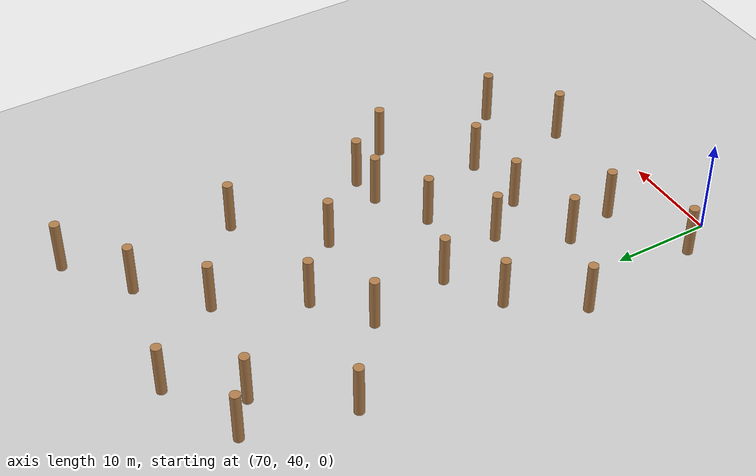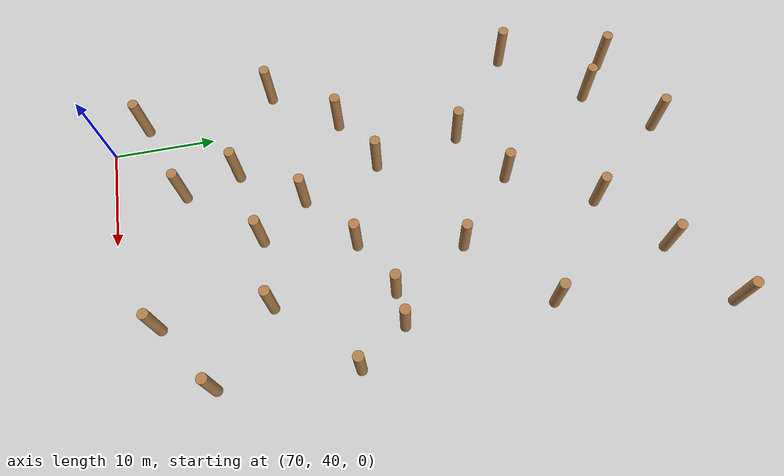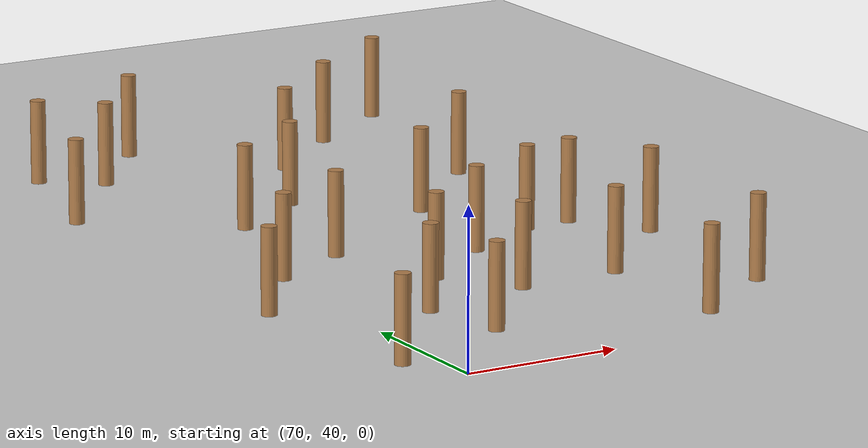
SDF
<sdf version="1.6">
 <world name="default">
  <model name="ground_plane">
   <static>1</static>
   <link name="link">
    <collision name="collision">
     <geometry><plane><normal>0 0 1</normal><size>100 100</size></plane></geometry>
     <surface><friction><ode><mu>100</mu><mu2>50</mu2></ode></friction></surface>
    </collision>
    <visual name="visual">
     <cast_shadows>0</cast_shadows>
     <geometry><plane><normal>0 0 1</normal><size>100 100</size></plane></geometry>
     <material>
      <script><uri>file://media/materials/scripts/gazebo.material</uri><name>Gazebo/Grey</name></script>
     </material>
    </visual>
   </link>
  </model>
  <model name="WoodPillars_2">
   <link name="link_clone">
    <inertial>
     <mass>1</mass>
     <inertia><ixx>0.145833</ixx><ixy>0</ixy><ixz>0</ixz><iyy>0.145833</iyy><iyz>0</iyz><izz>0.125</izz></inertia>
    </inertial>
    <pose>17.6954 -2.91348 -2e-06 0 -0 -0.001289</pose>
    <visual name="visual">
     <geometry><cylinder><radius>0.5</radius><length>5.50507</length></cylinder></geometry>
     <material>
      <script><name>Gazebo/Wood</name><uri>file://media/materials/scripts/gazebo.material</uri></script>
      <shader type="pixel"/>
     </material>
    </visual>
    <collision name="collision">
     <geometry><cylinder><radius>0.5</radius><length>5.50507</length></cylinder></geometry>
     <surface>
      <friction>
       <ode><mu>1</mu><mu2>1</mu2><fdir1>0 0 0</fdir1><slip1>0</slip1><slip2>0</slip2></ode>
       <torsional>
        <coefficient>1</coefficient>
        <patch_radius>0</patch_radius>
        <surface_radius>0</surface_radius>
        <use_patch_radius>1</use_patch_radius>
        <ode><slip>0</slip></ode>
       </torsional>
      </friction>
      <bounce><restitution_coefficient>0</restitution_coefficient><threshold>1e+06</threshold></bounce>
      <contact>
       <collide_without_contact>0</collide_without_contact>
       <collide_without_contact_bitmask>1</collide_without_contact_bitmask>
       <collide_bitmask>1</collide_bitmask>
       <ode>
        <soft_cfm>0</soft_cfm>
        <soft_erp>0.2</soft_erp>
        <kp>1e+13</kp>
        <kd>1</kd>
        <max_vel>0.01</max_vel>
        <min_depth>0</min_depth>
       </ode>
       <bullet>
        <split_impulse>1</split_impulse>
        <split_impulse_penetration_threshold>-0.01</split_impulse_penetration_threshold>
        <soft_cfm>0</soft_cfm>
        <soft_erp>0.2</soft_erp>
        <kp>1e+13</kp>
        <kd>1</kd>
       </bullet>
      </contact>
     </surface>
    </collision>
   </link>
   <link name="link_clone_11">
    <inertial>
     <mass>1</mass>
     <inertia><ixx>0.145833</ixx><ixy>0</ixy><ixz>0</ixz><iyy>0.145833</iyy><iyz>0</iyz><izz>0.125</izz></inertia>
    </inertial>
    <pose>20.1245 17.4079 -2e-06 0 -0 -0.001289</pose>
    <visual name="visual">
     <geometry><cylinder><radius>0.5</radius><length>5.50507</length></cylinder></geometry>
     <material>
      <script><name>Gazebo/Wood</name><uri>file://media/materials/scripts/gazebo.material</uri></script>
      <shader type="pixel"/>
     </material>
    </visual>
    <collision name="collision">
     <geometry><cylinder><radius>0.5</radius><length>5.50507</length></cylinder></geometry>
     <surface>
      <friction>
       <ode><mu>1</mu><mu2>1</mu2><fdir1>0 0 0</fdir1><slip1>0</slip1><slip2>0</slip2></ode>
       <torsional>
        <coefficient>1</coefficient>
        <patch_radius>0</patch_radius>
        <surface_radius>0</surface_radius>
        <use_patch_radius>1</use_patch_radius>
        <ode><slip>0</slip></ode>
       </torsional>
      </friction>
      <bounce><restitution_coefficient>0</restitution_coefficient><threshold>1e+06</threshold></bounce>
      <contact>
       <collide_without_contact>0</collide_without_contact>
       <collide_without_contact_bitmask>1</collide_without_contact_bitmask>
       <collide_bitmask>1</collide_bitmask>
       <ode>
        <soft_cfm>0</soft_cfm>
        <soft_erp>0.2</soft_erp>
        <kp>1e+13</kp>
        <kd>1</kd>
        <max_vel>0.01</max_vel>
        <min_depth>0</min_depth>
       </ode>
       <bullet>
        <split_impulse>1</split_impulse>
        <split_impulse_penetration_threshold>-0.01</split_impulse_penetration_threshold>
        <soft_cfm>0</soft_cfm>
        <soft_erp>0.2</soft_erp>
        <kp>1e+13</kp>
        <kd>1</kd>
       </bullet>
      </contact>
     </surface>
    </collision>
   </link>
   <link name="link_clone_12">
    <inertial>
     <mass>1</mass>
     <inertia><ixx>0.145833</ixx><ixy>0</ixy><ixz>0</ixz><iyy>0.145833</iyy><iyz>0</iyz><izz>0.125</izz></inertia>
    </inertial>
    <pose>36.6063 2.3916 -3e-06 0 -0 -0.001289</pose>
    <visual name="visual">
     <geometry><cylinder><radius>0.5</radius><length>5.50507</length></cylinder></geometry>
     <material>
      <script><name>Gazebo/Wood</name><uri>file://media/materials/scripts/gazebo.material</uri></script>
      <shader type="pixel"/>
     </material>
    </visual>
    <collision name="collision">
     <geometry><cylinder><radius>0.5</radius><length>5.50507</length></cylinder></geometry>
     <surface>
      <friction>
       <ode><mu>1</mu><mu2>1</mu2><fdir1>0 0 0</fdir1><slip1>0</slip1><slip2>0</slip2></ode>
       <torsional>
        <coefficient>1</coefficient>
        <patch_radius>0</patch_radius>
        <surface_radius>0</surface_radius>
        <use_patch_radius>1</use_patch_radius>
        <ode><slip>0</slip></ode>
       </torsional>
      </friction>
      <bounce><restitution_coefficient>0</restitution_coefficient><threshold>1e+06</threshold></bounce>
      <contact>
       <collide_without_contact>0</collide_without_contact>
       <collide_without_contact_bitmask>1</collide_without_contact_bitmask>
       <collide_bitmask>1</collide_bitmask>
       <ode>
        <soft_cfm>0</soft_cfm>
        <soft_erp>0.2</soft_erp>
        <kp>1e+13</kp>
        <kd>1</kd>
        <max_vel>0.01</max_vel>
        <min_depth>0</min_depth>
       </ode>
       <bullet>
        <split_impulse>1</split_impulse>
        <split_impulse_penetration_threshold>-0.01</split_impulse_penetration_threshold>
        <soft_cfm>0</soft_cfm>
        <soft_erp>0.2</soft_erp>
        <kp>1e+13</kp>
        <kd>1</kd>
       </bullet>
      </contact>
     </surface>
    </collision>
   </link>
   <link name="link_clone_13">
    <inertial>
     <mass>1</mass>
     <inertia><ixx>0.145833</ixx><ixy>0</ixy><ixz>0</ixz><iyy>0.145833</iyy><iyz>0</iyz><izz>0.125</izz></inertia>
    </inertial>
    <pose>32.2715 -23.3528 -3e-06 0 -0 -0.001289</pose>
    <visual name="visual">
     <geometry><cylinder><radius>0.5</radius><length>5.50507</length></cylinder></geometry>
     <material>
      <script><name>Gazebo/Wood</name><uri>file://media/materials/scripts/gazebo.material</uri></script>
      <shader type="pixel"/>
     </material>
    </visual>
    <collision name="collision">
     <geometry><cylinder><radius>0.5</radius><length>5.50507</length></cylinder></geometry>
     <surface>
      <friction>
       <ode><mu>1</mu><mu2>1</mu2><fdir1>0 0 0</fdir1><slip1>0</slip1><slip2>0</slip2></ode>
       <torsional>
        <coefficient>1</coefficient>
        <patch_radius>0</patch_radius>
        <surface_radius>0</surface_radius>
        <use_patch_radius>1</use_patch_radius>
        <ode><slip>0</slip></ode>
       </torsional>
      </friction>
      <bounce><restitution_coefficient>0</restitution_coefficient><threshold>1e+06</threshold></bounce>
      <contact>
       <collide_without_contact>0</collide_without_contact>
       <collide_without_contact_bitmask>1</collide_without_contact_bitmask>
       <collide_bitmask>1</collide_bitmask>
       <ode>
        <soft_cfm>0</soft_cfm>
        <soft_erp>0.2</soft_erp>
        <kp>1e+13</kp>
        <kd>1</kd>
        <max_vel>0.01</max_vel>
        <min_depth>0</min_depth>
       </ode>
       <bullet>
        <split_impulse>1</split_impulse>
        <split_impulse_penetration_threshold>-0.01</split_impulse_penetration_threshold>
        <soft_cfm>0</soft_cfm>
        <soft_erp>0.2</soft_erp>
        <kp>1e+13</kp>
        <kd>1</kd>
       </bullet>
      </contact>
     </surface>
    </collision>
   </link>
   <link name="link_clone_14">
    <inertial>
     <mass>1</mass>
     <inertia><ixx>0.145833</ixx><ixy>0</ixy><ixz>0</ixz><iyy>0.145833</iyy><iyz>0</iyz><izz>0.125</izz></inertia>
    </inertial>
    <pose>9.31461 -20.9997 -1e-06 0 -0 -0.001289</pose>
    <visual name="visual">
     <geometry><cylinder><radius>0.5</radius><length>5.50507</length></cylinder></geometry>
     <material>
      <script><name>Gazebo/Wood</name><uri>file://media/materials/scripts/gazebo.material</uri></script>
      <shader type="pixel"/>
     </material>
    </visual>
    <collision name="collision">
     <geometry><cylinder><radius>0.5</radius><length>5.50507</length></cylinder></geometry>
     <surface>
      <friction>
       <ode><mu>1</mu><mu2>1</mu2><fdir1>0 0 0</fdir1><slip1>0</slip1><slip2>0</slip2></ode>
       <torsional>
        <coefficient>1</coefficient>
        <patch_radius>0</patch_radius>
        <surface_radius>0</surface_radius>
        <use_patch_radius>1</use_patch_radius>
        <ode><slip>0</slip></ode>
       </torsional>
      </friction>
      <bounce><restitution_coefficient>0</restitution_coefficient><threshold>1e+06</threshold></bounce>
      <contact>
       <collide_without_contact>0</collide_without_contact>
       <collide_without_contact_bitmask>1</collide_without_contact_bitmask>
       <collide_bitmask>1</collide_bitmask>
       <ode>
        <soft_cfm>0</soft_cfm>
        <soft_erp>0.2</soft_erp>
        <kp>1e+13</kp>
        <kd>1</kd>
        <max_vel>0.01</max_vel>
        <min_depth>0</min_depth>
       </ode>
       <bullet>
        <split_impulse>1</split_impulse>
        <split_impulse_penetration_threshold>-0.01</split_impulse_penetration_threshold>
        <soft_cfm>0</soft_cfm>
        <soft_erp>0.2</soft_erp>
        <kp>1e+13</kp>
        <kd>1</kd>
       </bullet>
      </contact>
     </surface>
    </collision>
   </link>
   <link name="link_clone_15">
    <inertial>
     <mass>1</mass>
     <inertia><ixx>0.145833</ixx><ixy>0</ixy><ixz>0</ixz><iyy>0.145833</iyy><iyz>0</iyz><izz>0.125</izz></inertia>
    </inertial>
    <pose>17.9894 -25.1945 -2e-06 0 -0 -0.001289</pose>
    <visual name="visual">
     <geometry><cylinder><radius>0.5</radius><length>5.50507</length></cylinder></geometry>
     <material>
      <script><name>Gazebo/Wood</name><uri>file://media/materials/scripts/gazebo.material</uri></script>
      <shader type="pixel"/>
     </material>
    </visual>
    <collision name="collision">
     <geometry><cylinder><radius>0.5</radius><length>5.50507</length></cylinder></geometry>
     <surface>
      <friction>
       <ode><mu>1</mu><mu2>1</mu2><fdir1>0 0 0</fdir1><slip1>0</slip1><slip2>0</slip2></ode>
       <torsional>
        <coefficient>1</coefficient>
        <patch_radius>0</patch_radius>
        <surface_radius>0</surface_radius>
        <use_patch_radius>1</use_patch_radius>
        <ode><slip>0</slip></ode>
       </torsional>
      </friction>
      <bounce><restitution_coefficient>0</restitution_coefficient><threshold>1e+06</threshold></bounce>
      <contact>
       <collide_without_contact>0</collide_without_contact>
       <collide_without_contact_bitmask>1</collide_without_contact_bitmask>
       <collide_bitmask>1</collide_bitmask>
       <ode>
        <soft_cfm>0</soft_cfm>
        <soft_erp>0.2</soft_erp>
        <kp>1e+13</kp>
        <kd>1</kd>
        <max_vel>0.01</max_vel>
        <min_depth>0</min_depth>
       </ode>
       <bullet>
        <split_impulse>1</split_impulse>
        <split_impulse_penetration_threshold>-0.01</split_impulse_penetration_threshold>
        <soft_cfm>0</soft_cfm>
        <soft_erp>0.2</soft_erp>
        <kp>1e+13</kp>
        <kd>1</kd>
       </bullet>
      </contact>
     </surface>
    </collision>
   </link>
   <link name="link_clone_16">
    <inertial>
     <mass>1</mass>
     <inertia><ixx>0.145833</ixx><ixy>0</ixy><ixz>0</ixz><iyy>0.145833</iyy><iyz>0</iyz><izz>0.125</izz></inertia>
    </inertial>
    <pose>32.9662 -11.9429 -3e-06 0 -0 -0.001289</pose>
    <visual name="visual">
     <geometry><cylinder><radius>0.5</radius><length>5.50507</length></cylinder></geometry>
     <material>
      <script><name>Gazebo/Wood</name><uri>file://media/materials/scripts/gazebo.material</uri></script>
      <shader type="pixel"/>
     </material>
    </visual>
    <collision name="collision">
     <geometry><cylinder><radius>0.5</radius><length>5.50507</length></cylinder></geometry>
     <surface>
      <friction>
       <ode><mu>1</mu><mu2>1</mu2><fdir1>0 0 0</fdir1><slip1>0</slip1><slip2>0</slip2></ode>
       <torsional>
        <coefficient>1</coefficient>
        <patch_radius>0</patch_radius>
        <surface_radius>0</surface_radius>
        <use_patch_radius>1</use_patch_radius>
        <ode><slip>0</slip></ode>
       </torsional>
      </friction>
      <bounce><restitution_coefficient>0</restitution_coefficient><threshold>1e+06</threshold></bounce>
      <contact>
       <collide_without_contact>0</collide_without_contact>
       <collide_without_contact_bitmask>1</collide_without_contact_bitmask>
       <collide_bitmask>1</collide_bitmask>
       <ode>
        <soft_cfm>0</soft_cfm>
        <soft_erp>0.2</soft_erp>
        <kp>1e+13</kp>
        <kd>1</kd>
        <max_vel>0.01</max_vel>
        <min_depth>0</min_depth>
       </ode>
       <bullet>
        <split_impulse>1</split_impulse>
        <split_impulse_penetration_threshold>-0.01</split_impulse_penetration_threshold>
        <soft_cfm>0</soft_cfm>
        <soft_erp>0.2</soft_erp>
        <kp>1e+13</kp>
        <kd>1</kd>
       </bullet>
      </contact>
     </surface>
    </collision>
   </link>
   <link name="link_clone_17">
    <inertial>
     <mass>1</mass>
     <inertia><ixx>0.145833</ixx><ixy>0</ixy><ixz>0</ixz><iyy>0.145833</iyy><iyz>0</iyz><izz>0.125</izz></inertia>
    </inertial>
    <pose>19.3784 -11.4604 -2e-06 0 -0 -0.001289</pose>
    <visual name="visual">
     <geometry><cylinder><radius>0.5</radius><length>5.50507</length></cylinder></geometry>
     <material>
      <script><name>Gazebo/Wood</name><uri>file://media/materials/scripts/gazebo.material</uri></script>
      <shader type="pixel"/>
     </material>
    </visual>
    <collision name="collision">
     <geometry><cylinder><radius>0.5</radius><length>5.50507</length></cylinder></geometry>
     <surface>
      <friction>
       <ode><mu>1</mu><mu2>1</mu2><fdir1>0 0 0</fdir1><slip1>0</slip1><slip2>0</slip2></ode>
       <torsional>
        <coefficient>1</coefficient>
        <patch_radius>0</patch_radius>
        <surface_radius>0</surface_radius>
        <use_patch_radius>1</use_patch_radius>
        <ode><slip>0</slip></ode>
       </torsional>
      </friction>
      <bounce><restitution_coefficient>0</restitution_coefficient><threshold>1e+06</threshold></bounce>
      <contact>
       <collide_without_contact>0</collide_without_contact>
       <collide_without_contact_bitmask>1</collide_without_contact_bitmask>
       <collide_bitmask>1</collide_bitmask>
       <ode>
        <soft_cfm>0</soft_cfm>
        <soft_erp>0.2</soft_erp>
        <kp>1e+13</kp>
        <kd>1</kd>
        <max_vel>0.01</max_vel>
        <min_depth>0</min_depth>
       </ode>
       <bullet>
        <split_impulse>1</split_impulse>
        <split_impulse_penetration_threshold>-0.01</split_impulse_penetration_threshold>
        <soft_cfm>0</soft_cfm>
        <soft_erp>0.2</soft_erp>
        <kp>1e+13</kp>
        <kd>1</kd>
       </bullet>
      </contact>
     </surface>
    </collision>
   </link>
   <link name="link_clone_18">
    <inertial>
     <mass>1</mass>
     <inertia><ixx>0.145833</ixx><ixy>0</ixy><ixz>0</ixz><iyy>0.145833</iyy><iyz>0</iyz><izz>0.125</izz></inertia>
    </inertial>
    <pose>9.1573 3.67739 -1e-06 0 -0 -0.001289</pose>
    <visual name="visual">
     <geometry><cylinder><radius>0.5</radius><length>5.50507</length></cylinder></geometry>
     <material>
      <script><name>Gazebo/Wood</name><uri>file://media/materials/scripts/gazebo.material</uri></script>
      <shader type="pixel"/>
     </material>
    </visual>
    <collision name="collision">
     <geometry><cylinder><radius>0.5</radius><length>5.50507</length></cylinder></geometry>
     <surface>
      <friction>
       <ode><mu>1</mu><mu2>1</mu2><fdir1>0 0 0</fdir1><slip1>0</slip1><slip2>0</slip2></ode>
       <torsional>
        <coefficient>1</coefficient>
        <patch_radius>0</patch_radius>
        <surface_radius>0</surface_radius>
        <use_patch_radius>1</use_patch_radius>
        <ode><slip>0</slip></ode>
       </torsional>
      </friction>
      <bounce><restitution_coefficient>0</restitution_coefficient><threshold>1e+06</threshold></bounce>
      <contact>
       <collide_without_contact>0</collide_without_contact>
       <collide_without_contact_bitmask>1</collide_without_contact_bitmask>
       <collide_bitmask>1</collide_bitmask>
       <ode>
        <soft_cfm>0</soft_cfm>
        <soft_erp>0.2</soft_erp>
        <kp>1e+13</kp>
        <kd>1</kd>
        <max_vel>0.01</max_vel>
        <min_depth>0</min_depth>
       </ode>
       <bullet>
        <split_impulse>1</split_impulse>
        <split_impulse_penetration_threshold>-0.01</split_impulse_penetration_threshold>
        <soft_cfm>0</soft_cfm>
        <soft_erp>0.2</soft_erp>
        <kp>1e+13</kp>
        <kd>1</kd>
       </bullet>
      </contact>
     </surface>
    </collision>
   </link>
   <link name="link_clone_21">
    <inertial>
     <mass>1</mass>
     <inertia><ixx>0.145833</ixx><ixy>0</ixy><ixz>0</ixz><iyy>0.145833</iyy><iyz>0</iyz><izz>0.125</izz></inertia>
    </inertial>
    <pose>15.2748 11.406 -1e-06 0 -0 -0.001289</pose>
    <visual name="visual">
     <geometry><cylinder><radius>0.5</radius><length>5.50507</length></cylinder></geometry>
     <material>
      <script><name>Gazebo/Wood</name><uri>file://media/materials/scripts/gazebo.material</uri></script>
      <shader type="pixel"/>
     </material>
    </visual>
    <collision name="collision">
     <geometry><cylinder><radius>0.5</radius><length>5.50507</length></cylinder></geometry>
     <surface>
      <friction>
       <ode><mu>1</mu><mu2>1</mu2><fdir1>0 0 0</fdir1><slip1>0</slip1><slip2>0</slip2></ode>
       <torsional>
        <coefficient>1</coefficient>
        <patch_radius>0</patch_radius>
        <surface_radius>0</surface_radius>
        <use_patch_radius>1</use_patch_radius>
        <ode><slip>0</slip></ode>
       </torsional>
      </friction>
      <bounce><restitution_coefficient>0</restitution_coefficient><threshold>1e+06</threshold></bounce>
      <contact>
       <collide_without_contact>0</collide_without_contact>
       <collide_without_contact_bitmask>1</collide_without_contact_bitmask>
       <collide_bitmask>1</collide_bitmask>
       <ode>
        <soft_cfm>0</soft_cfm>
        <soft_erp>0.2</soft_erp>
        <kp>1e+13</kp>
        <kd>1</kd>
        <max_vel>0.01</max_vel>
        <min_depth>0</min_depth>
       </ode>
       <bullet>
        <split_impulse>1</split_impulse>
        <split_impulse_penetration_threshold>-0.01</split_impulse_penetration_threshold>
        <soft_cfm>0</soft_cfm>
        <soft_erp>0.2</soft_erp>
        <kp>1e+13</kp>
        <kd>1</kd>
       </bullet>
      </contact>
     </surface>
    </collision>
   </link>
   <link name="link_clone_22">
    <inertial>
     <mass>1</mass>
     <inertia><ixx>0.145833</ixx><ixy>0</ixy><ixz>0</ixz><iyy>0.145833</iyy><iyz>0</iyz><izz>0.125</izz></inertia>
    </inertial>
    <pose>27.313 9.05961 -2e-06 0 -0 -0.001289</pose>
    <visual name="visual">
     <geometry><cylinder><radius>0.5</radius><length>5.50507</length></cylinder></geometry>
     <material>
      <script><name>Gazebo/Wood</name><uri>file://media/materials/scripts/gazebo.material</uri></script>
      <shader type="pixel"/>
     </material>
    </visual>
    <collision name="collision">
     <geometry><cylinder><radius>0.5</radius><length>5.50507</length></cylinder></geometry>
     <surface>
      <friction>
       <ode><mu>1</mu><mu2>1</mu2><fdir1>0 0 0</fdir1><slip1>0</slip1><slip2>0</slip2></ode>
       <torsional>
        <coefficient>1</coefficient>
        <patch_radius>0</patch_radius>
        <surface_radius>0</surface_radius>
        <use_patch_radius>1</use_patch_radius>
        <ode><slip>0</slip></ode>
       </torsional>
      </friction>
      <bounce><restitution_coefficient>0</restitution_coefficient><threshold>1e+06</threshold></bounce>
      <contact>
       <collide_without_contact>0</collide_without_contact>
       <collide_without_contact_bitmask>1</collide_without_contact_bitmask>
       <collide_bitmask>1</collide_bitmask>
       <ode>
        <soft_cfm>0</soft_cfm>
        <soft_erp>0.2</soft_erp>
        <kp>1e+13</kp>
        <kd>1</kd>
        <max_vel>0.01</max_vel>
        <min_depth>0</min_depth>
       </ode>
       <bullet>
        <split_impulse>1</split_impulse>
        <split_impulse_penetration_threshold>-0.01</split_impulse_penetration_threshold>
        <soft_cfm>0</soft_cfm>
        <soft_erp>0.2</soft_erp>
        <kp>1e+13</kp>
        <kd>1</kd>
       </bullet>
      </contact>
     </surface>
    </collision>
   </link>
   <link name="link_clone_23">
    <inertial>
     <mass>1</mass>
     <inertia><ixx>0.145833</ixx><ixy>0</ixy><ixz>0</ixz><iyy>0.145833</iyy><iyz>0</iyz><izz>0.125</izz></inertia>
    </inertial>
    <pose>29.5176 -4.71623 -3e-06 0 -0 -0.001289</pose>
    <visual name="visual">
     <geometry><cylinder><radius>0.5</radius><length>5.50507</length></cylinder></geometry>
     <material>
      <script><name>Gazebo/Wood</name><uri>file://media/materials/scripts/gazebo.material</uri></script>
      <shader type="pixel"/>
     </material>
    </visual>
    <collision name="collision">
     <geometry><cylinder><radius>0.5</radius><length>5.50507</length></cylinder></geometry>
     <surface>
      <friction>
       <ode><mu>1</mu><mu2>1</mu2><fdir1>0 0 0</fdir1><slip1>0</slip1><slip2>0</slip2></ode>
       <torsional>
        <coefficient>1</coefficient>
        <patch_radius>0</patch_radius>
        <surface_radius>0</surface_radius>
        <use_patch_radius>1</use_patch_radius>
        <ode><slip>0</slip></ode>
       </torsional>
      </friction>
      <bounce><restitution_coefficient>0</restitution_coefficient><threshold>1e+06</threshold></bounce>
      <contact>
       <collide_without_contact>0</collide_without_contact>
       <collide_without_contact_bitmask>1</collide_without_contact_bitmask>
       <collide_bitmask>1</collide_bitmask>
       <ode>
        <soft_cfm>0</soft_cfm>
        <soft_erp>0.2</soft_erp>
        <kp>1e+13</kp>
        <kd>1</kd>
        <max_vel>0.01</max_vel>
        <min_depth>0</min_depth>
       </ode>
       <bullet>
        <split_impulse>1</split_impulse>
        <split_impulse_penetration_threshold>-0.01</split_impulse_penetration_threshold>
        <soft_cfm>0</soft_cfm>
        <soft_erp>0.2</soft_erp>
        <kp>1e+13</kp>
        <kd>1</kd>
       </bullet>
      </contact>
     </surface>
    </collision>
   </link>
   <link name="link_clone_25">
    <inertial>
     <mass>1</mass>
     <inertia><ixx>0.145833</ixx><ixy>0</ixy><ixz>0</ixz><iyy>0.145833</iyy><iyz>0</iyz><izz>0.125</izz></inertia>
    </inertial>
    <pose>11.7271 14.0632 -1e-06 0 -0 -0.001289</pose>
    <visual name="visual">
     <geometry><cylinder><radius>0.5</radius><length>5.50507</length></cylinder></geometry>
     <material>
      <script><name>Gazebo/Wood</name><uri>file://media/materials/scripts/gazebo.material</uri></script>
      <shader type="pixel"/>
     </material>
    </visual>
    <collision name="collision">
     <geometry><cylinder><radius>0.5</radius><length>5.50507</length></cylinder></geometry>
     <surface>
      <friction>
       <ode><mu>1</mu><mu2>1</mu2><fdir1>0 0 0</fdir1><slip1>0</slip1><slip2>0</slip2></ode>
       <torsional>
        <coefficient>1</coefficient>
        <patch_radius>0</patch_radius>
        <surface_radius>0</surface_radius>
        <use_patch_radius>1</use_patch_radius>
        <ode><slip>0</slip></ode>
       </torsional>
      </friction>
      <bounce><restitution_coefficient>0</restitution_coefficient><threshold>1e+06</threshold></bounce>
      <contact>
       <collide_without_contact>0</collide_without_contact>
       <collide_without_contact_bitmask>1</collide_without_contact_bitmask>
       <collide_bitmask>1</collide_bitmask>
       <ode>
        <soft_cfm>0</soft_cfm>
        <soft_erp>0.2</soft_erp>
        <kp>1e+13</kp>
        <kd>1</kd>
        <max_vel>0.01</max_vel>
        <min_depth>0</min_depth>
       </ode>
       <bullet>
        <split_impulse>1</split_impulse>
        <split_impulse_penetration_threshold>-0.01</split_impulse_penetration_threshold>
        <soft_cfm>0</soft_cfm>
        <soft_erp>0.2</soft_erp>
        <kp>1e+13</kp>
        <kd>1</kd>
       </bullet>
      </contact>
     </surface>
    </collision>
   </link>
   <link name="link_clone_26">
    <inertial>
     <mass>1</mass>
     <inertia><ixx>0.145833</ixx><ixy>0</ixy><ixz>0</ixz><iyy>0.145833</iyy><iyz>0</iyz><izz>0.125</izz></inertia>
    </inertial>
    <pose>13.9187 -14.5508 -1e-06 0 -0 -0.001289</pose>
    <visual name="visual">
     <geometry><cylinder><radius>0.5</radius><length>5.50507</length></cylinder></geometry>
     <material>
      <script><name>Gazebo/Wood</name><uri>file://media/materials/scripts/gazebo.material</uri></script>
      <shader type="pixel"/>
     </material>
    </visual>
    <collision name="collision">
     <geometry><cylinder><radius>0.5</radius><length>5.50507</length></cylinder></geometry>
     <surface>
      <friction>
       <ode><mu>1</mu><mu2>1</mu2><fdir1>0 0 0</fdir1><slip1>0</slip1><slip2>0</slip2></ode>
       <torsional>
        <coefficient>1</coefficient>
        <patch_radius>0</patch_radius>
        <surface_radius>0</surface_radius>
        <use_patch_radius>1</use_patch_radius>
        <ode><slip>0</slip></ode>
       </torsional>
      </friction>
      <bounce><restitution_coefficient>0</restitution_coefficient><threshold>1e+06</threshold></bounce>
      <contact>
       <collide_without_contact>0</collide_without_contact>
       <collide_without_contact_bitmask>1</collide_without_contact_bitmask>
       <collide_bitmask>1</collide_bitmask>
       <ode>
        <soft_cfm>0</soft_cfm>
        <soft_erp>0.2</soft_erp>
        <kp>1e+13</kp>
        <kd>1</kd>
        <max_vel>0.01</max_vel>
        <min_depth>0</min_depth>
       </ode>
       <bullet>
        <split_impulse>1</split_impulse>
        <split_impulse_penetration_threshold>-0.01</split_impulse_penetration_threshold>
        <soft_cfm>0</soft_cfm>
        <soft_erp>0.2</soft_erp>
        <kp>1e+13</kp>
        <kd>1</kd>
       </bullet>
      </contact>
     </surface>
    </collision>
   </link>
   <link name="link_clone_28">
    <inertial>
     <mass>1</mass>
     <inertia><ixx>0.145833</ixx><ixy>0</ixy><ixz>0</ixz><iyy>0.145833</iyy><iyz>0</iyz><izz>0.125</izz></inertia>
    </inertial>
    <pose>27.5353 -14.766 -3e-06 0 -0 -0.001289</pose>
    <visual name="visual">
     <geometry><cylinder><radius>0.5</radius><length>5.50507</length></cylinder></geometry>
     <material>
      <script><name>Gazebo/Wood</name><uri>file://media/materials/scripts/gazebo.material</uri></script>
      <shader type="pixel"/>
     </material>
    </visual>
    <collision name="collision">
     <geometry><cylinder><radius>0.5</radius><length>5.50507</length></cylinder></geometry>
     <surface>
      <friction>
       <ode><mu>1</mu><mu2>1</mu2><fdir1>0 0 0</fdir1><slip1>0</slip1><slip2>0</slip2></ode>
       <torsional>
        <coefficient>1</coefficient>
        <patch_radius>0</patch_radius>
        <surface_radius>0</surface_radius>
        <use_patch_radius>1</use_patch_radius>
        <ode><slip>0</slip></ode>
       </torsional>
      </friction>
      <bounce><restitution_coefficient>0</restitution_coefficient><threshold>1e+06</threshold></bounce>
      <contact>
       <collide_without_contact>0</collide_without_contact>
       <collide_without_contact_bitmask>1</collide_without_contact_bitmask>
       <collide_bitmask>1</collide_bitmask>
       <ode>
        <soft_cfm>0</soft_cfm>
        <soft_erp>0.2</soft_erp>
        <kp>1e+13</kp>
        <kd>1</kd>
        <max_vel>0.01</max_vel>
        <min_depth>0</min_depth>
       </ode>
       <bullet>
        <split_impulse>1</split_impulse>
        <split_impulse_penetration_threshold>-0.01</split_impulse_penetration_threshold>
        <soft_cfm>0</soft_cfm>
        <soft_erp>0.2</soft_erp>
        <kp>1e+13</kp>
        <kd>1</kd>
       </bullet>
      </contact>
     </surface>
    </collision>
   </link>
   <link name="link_clone_29">
    <inertial>
     <mass>1</mass>
     <inertia><ixx>0.145833</ixx><ixy>0</ixy><ixz>0</ixz><iyy>0.145833</iyy><iyz>0</iyz><izz>0.125</izz></inertia>
    </inertial>
    <pose>39.4401 -16.2696 -4e-06 0 -0 -0.001289</pose>
    <visual name="visual">
     <geometry><cylinder><radius>0.5</radius><length>5.50507</length></cylinder></geometry>
     <material>
      <script><name>Gazebo/Wood</name><uri>file://media/materials/scripts/gazebo.material</uri></script>
      <shader type="pixel"/>
     </material>
    </visual>
    <collision name="collision">
     <geometry><cylinder><radius>0.5</radius><length>5.50507</length></cylinder></geometry>
     <surface>
      <friction>
       <ode><mu>1</mu><mu2>1</mu2><fdir1>0 0 0</fdir1><slip1>0</slip1><slip2>0</slip2></ode>
       <torsional>
        <coefficient>1</coefficient>
        <patch_radius>0</patch_radius>
        <surface_radius>0</surface_radius>
        <use_patch_radius>1</use_patch_radius>
        <ode><slip>0</slip></ode>
       </torsional>
      </friction>
      <bounce><restitution_coefficient>0</restitution_coefficient><threshold>1e+06</threshold></bounce>
      <contact>
       <collide_without_contact>0</collide_without_contact>
       <collide_without_contact_bitmask>1</collide_without_contact_bitmask>
       <collide_bitmask>1</collide_bitmask>
       <ode>
        <soft_cfm>0</soft_cfm>
        <soft_erp>0.2</soft_erp>
        <kp>1e+13</kp>
        <kd>1</kd>
        <max_vel>0.01</max_vel>
        <min_depth>0</min_depth>
       </ode>
       <bullet>
        <split_impulse>1</split_impulse>
        <split_impulse_penetration_threshold>-0.01</split_impulse_penetration_threshold>
        <soft_cfm>0</soft_cfm>
        <soft_erp>0.2</soft_erp>
        <kp>1e+13</kp>
        <kd>1</kd>
       </bullet>
      </contact>
     </surface>
    </collision>
   </link>
   <link name="link_clone_33">
    <inertial>
     <mass>1</mass>
     <inertia><ixx>0.145833</ixx><ixy>0</ixy><ixz>0</ixz><iyy>0.145833</iyy><iyz>0</iyz><izz>0.125</izz></inertia>
    </inertial>
    <pose>39.6457 18.8804 -3e-06 0 -0 -0.001289</pose>
    <visual name="visual">
     <geometry><cylinder><radius>0.5</radius><length>5.50507</length></cylinder></geometry>
     <material>
      <script><name>Gazebo/Wood</name><uri>file://media/materials/scripts/gazebo.material</uri></script>
      <shader type="pixel"/>
     </material>
    </visual>
    <collision name="collision">
     <geometry><cylinder><radius>0.5</radius><length>5.50507</length></cylinder></geometry>
     <surface>
      <friction>
       <ode><mu>1</mu><mu2>1</mu2><fdir1>0 0 0</fdir1><slip1>0</slip1><slip2>0</slip2></ode>
       <torsional>
        <coefficient>1</coefficient>
        <patch_radius>0</patch_radius>
        <surface_radius>0</surface_radius>
        <use_patch_radius>1</use_patch_radius>
        <ode><slip>0</slip></ode>
       </torsional>
      </friction>
      <bounce><restitution_coefficient>0</restitution_coefficient><threshold>1e+06</threshold></bounce>
      <contact>
       <collide_without_contact>0</collide_without_contact>
       <collide_without_contact_bitmask>1</collide_without_contact_bitmask>
       <collide_bitmask>1</collide_bitmask>
       <ode>
        <soft_cfm>0</soft_cfm>
        <soft_erp>0.2</soft_erp>
        <kp>1e+13</kp>
        <kd>1</kd>
        <max_vel>0.01</max_vel>
        <min_depth>0</min_depth>
       </ode>
       <bullet>
        <split_impulse>1</split_impulse>
        <split_impulse_penetration_threshold>-0.01</split_impulse_penetration_threshold>
        <soft_cfm>0</soft_cfm>
        <soft_erp>0.2</soft_erp>
        <kp>1e+13</kp>
        <kd>1</kd>
       </bullet>
      </contact>
     </surface>
    </collision>
   </link>
   <link name="link_clone_34">
    <inertial>
     <mass>1</mass>
     <inertia><ixx>0.145833</ixx><ixy>0</ixy><ixz>0</ixz><iyy>0.145833</iyy><iyz>0</iyz><izz>0.125</izz></inertia>
    </inertial>
    <pose>25.4673 -23.5908 -3e-06 0 -0 -0.001289</pose>
    <visual name="visual">
     <geometry><cylinder><radius>0.5</radius><length>5.50507</length></cylinder></geometry>
     <material>
      <script><name>Gazebo/Wood</name><uri>file://media/materials/scripts/gazebo.material</uri></script>
      <shader type="pixel"/>
     </material>
    </visual>
    <collision name="collision">
     <geometry><cylinder><radius>0.5</radius><length>5.50507</length></cylinder></geometry>
     <surface>
      <friction>
       <ode><mu>1</mu><mu2>1</mu2><fdir1>0 0 0</fdir1><slip1>0</slip1><slip2>0</slip2></ode>
       <torsional>
        <coefficient>1</coefficient>
        <patch_radius>0</patch_radius>
        <surface_radius>0</surface_radius>
        <use_patch_radius>1</use_patch_radius>
        <ode><slip>0</slip></ode>
       </torsional>
      </friction>
      <bounce><restitution_coefficient>0</restitution_coefficient><threshold>1e+06</threshold></bounce>
      <contact>
       <collide_without_contact>0</collide_without_contact>
       <collide_without_contact_bitmask>1</collide_without_contact_bitmask>
       <collide_bitmask>1</collide_bitmask>
       <ode>
        <soft_cfm>0</soft_cfm>
        <soft_erp>0.2</soft_erp>
        <kp>1e+13</kp>
        <kd>1</kd>
        <max_vel>0.01</max_vel>
        <min_depth>0</min_depth>
       </ode>
       <bullet>
        <split_impulse>1</split_impulse>
        <split_impulse_penetration_threshold>-0.01</split_impulse_penetration_threshold>
        <soft_cfm>0</soft_cfm>
        <soft_erp>0.2</soft_erp>
        <kp>1e+13</kp>
        <kd>1</kd>
       </bullet>
      </contact>
     </surface>
    </collision>
   </link>
   <link name="link_clone_4">
    <inertial>
     <mass>1</mass>
     <inertia><ixx>0.145833</ixx><ixy>0</ixy><ixz>0</ixz><iyy>0.145833</iyy><iyz>0</iyz><izz>0.125</izz></inertia>
    </inertial>
    <pose>23.1128 0.93751 -2e-06 0 -0 -0.001289</pose>
    <visual name="visual">
     <geometry><cylinder><radius>0.5</radius><length>5.50507</length></cylinder></geometry>
     <material>
      <script><name>Gazebo/Wood</name><uri>file://media/materials/scripts/gazebo.material</uri></script>
      <shader type="pixel"/>
     </material>
    </visual>
    <collision name="collision">
     <geometry><cylinder><radius>0.5</radius><length>5.50507</length></cylinder></geometry>
     <surface>
      <friction>
       <ode><mu>1</mu><mu2>1</mu2><fdir1>0 0 0</fdir1><slip1>0</slip1><slip2>0</slip2></ode>
       <torsional>
        <coefficient>1</coefficient>
        <patch_radius>0</patch_radius>
        <surface_radius>0</surface_radius>
        <use_patch_radius>1</use_patch_radius>
        <ode><slip>0</slip></ode>
       </torsional>
      </friction>
      <bounce><restitution_coefficient>0</restitution_coefficient><threshold>1e+06</threshold></bounce>
      <contact>
       <collide_without_contact>0</collide_without_contact>
       <collide_without_contact_bitmask>1</collide_without_contact_bitmask>
       <collide_bitmask>1</collide_bitmask>
       <ode>
        <soft_cfm>0</soft_cfm>
        <soft_erp>0.2</soft_erp>
        <kp>1e+13</kp>
        <kd>1</kd>
        <max_vel>0.01</max_vel>
        <min_depth>0</min_depth>
       </ode>
       <bullet>
        <split_impulse>1</split_impulse>
        <split_impulse_penetration_threshold>-0.01</split_impulse_penetration_threshold>
        <soft_cfm>0</soft_cfm>
        <soft_erp>0.2</soft_erp>
        <kp>1e+13</kp>
        <kd>1</kd>
       </bullet>
      </contact>
     </surface>
    </collision>
   </link>
   <link name="link_clone_5">
    <inertial>
     <mass>1</mass>
     <inertia><ixx>0.145833</ixx><ixy>0</ixy><ixz>0</ixz><iyy>0.145833</iyy><iyz>0</iyz><izz>0.125</izz></inertia>
    </inertial>
    <pose>33.2189 14.316 -3e-06 0 -0 -0.001289</pose>
    <visual name="visual">
     <geometry><cylinder><radius>0.5</radius><length>5.50507</length></cylinder></geometry>
     <material>
      <script><name>Gazebo/Wood</name><uri>file://media/materials/scripts/gazebo.material</uri></script>
      <shader type="pixel"/>
     </material>
    </visual>
    <collision name="collision">
     <geometry><cylinder><radius>0.5</radius><length>5.50507</length></cylinder></geometry>
     <surface>
      <friction>
       <ode><mu>1</mu><mu2>1</mu2><fdir1>0 0 0</fdir1><slip1>0</slip1><slip2>0</slip2></ode>
       <torsional>
        <coefficient>1</coefficient>
        <patch_radius>0</patch_radius>
        <surface_radius>0</surface_radius>
        <use_patch_radius>1</use_patch_radius>
        <ode><slip>0</slip></ode>
       </torsional>
      </friction>
      <bounce><restitution_coefficient>0</restitution_coefficient><threshold>1e+06</threshold></bounce>
      <contact>
       <collide_without_contact>0</collide_without_contact>
       <collide_without_contact_bitmask>1</collide_without_contact_bitmask>
       <collide_bitmask>1</collide_bitmask>
       <ode>
        <soft_cfm>0</soft_cfm>
        <soft_erp>0.2</soft_erp>
        <kp>1e+13</kp>
        <kd>1</kd>
        <max_vel>0.01</max_vel>
        <min_depth>0</min_depth>
       </ode>
       <bullet>
        <split_impulse>1</split_impulse>
        <split_impulse_penetration_threshold>-0.01</split_impulse_penetration_threshold>
        <soft_cfm>0</soft_cfm>
        <soft_erp>0.2</soft_erp>
        <kp>1e+13</kp>
        <kd>1</kd>
       </bullet>
      </contact>
     </surface>
    </collision>
   </link>
   <link name="link_clone_6">
    <inertial>
     <mass>1</mass>
     <inertia><ixx>0.145833</ixx><ixy>0</ixy><ixz>0</ixz><iyy>0.145833</iyy><iyz>0</iyz><izz>0.125</izz></inertia>
    </inertial>
    <pose>36.2258 -11.6926 -3e-06 0 -0 -0.001289</pose>
    <visual name="visual">
     <geometry><cylinder><radius>0.5</radius><length>5.50507</length></cylinder></geometry>
     <material>
      <script><name>Gazebo/Wood</name><uri>file://media/materials/scripts/gazebo.material</uri></script>
      <shader type="pixel"/>
     </material>
    </visual>
    <collision name="collision">
     <geometry><cylinder><radius>0.5</radius><length>5.50507</length></cylinder></geometry>
     <surface>
      <friction>
       <ode><mu>1</mu><mu2>1</mu2><fdir1>0 0 0</fdir1><slip1>0</slip1><slip2>0</slip2></ode>
       <torsional>
        <coefficient>1</coefficient>
        <patch_radius>0</patch_radius>
        <surface_radius>0</surface_radius>
        <use_patch_radius>1</use_patch_radius>
        <ode><slip>0</slip></ode>
       </torsional>
      </friction>
      <bounce><restitution_coefficient>0</restitution_coefficient><threshold>1e+06</threshold></bounce>
      <contact>
       <collide_without_contact>0</collide_without_contact>
       <collide_without_contact_bitmask>1</collide_without_contact_bitmask>
       <collide_bitmask>1</collide_bitmask>
       <ode>
        <soft_cfm>0</soft_cfm>
        <soft_erp>0.2</soft_erp>
        <kp>1e+13</kp>
        <kd>1</kd>
        <max_vel>0.01</max_vel>
        <min_depth>0</min_depth>
       </ode>
       <bullet>
        <split_impulse>1</split_impulse>
        <split_impulse_penetration_threshold>-0.01</split_impulse_penetration_threshold>
        <soft_cfm>0</soft_cfm>
        <soft_erp>0.2</soft_erp>
        <kp>1e+13</kp>
        <kd>1</kd>
       </bullet>
      </contact>
     </surface>
    </collision>
   </link>
   <link name="link_clone_7">
    <inertial>
     <mass>1</mass>
     <inertia><ixx>0.145833</ixx><ixy>0</ixy><ixz>0</ixz><iyy>0.145833</iyy><iyz>0</iyz><izz>0.125</izz></inertia>
    </inertial>
    <pose>22.0331 -19.0814 -2e-06 0 -0 -0.001289</pose>
    <visual name="visual">
     <geometry><cylinder><radius>0.5</radius><length>5.50507</length></cylinder></geometry>
     <material>
      <script><name>Gazebo/Wood</name><uri>file://media/materials/scripts/gazebo.material</uri></script>
      <shader type="pixel"/>
     </material>
    </visual>
    <collision name="collision">
     <geometry><cylinder><radius>0.5</radius><length>5.50507</length></cylinder></geometry>
     <surface>
      <friction>
       <ode><mu>1</mu><mu2>1</mu2><fdir1>0 0 0</fdir1><slip1>0</slip1><slip2>0</slip2></ode>
       <torsional>
        <coefficient>1</coefficient>
        <patch_radius>0</patch_radius>
        <surface_radius>0</surface_radius>
        <use_patch_radius>1</use_patch_radius>
        <ode><slip>0</slip></ode>
       </torsional>
      </friction>
      <bounce><restitution_coefficient>0</restitution_coefficient><threshold>1e+06</threshold></bounce>
      <contact>
       <collide_without_contact>0</collide_without_contact>
       <collide_without_contact_bitmask>1</collide_without_contact_bitmask>
       <collide_bitmask>1</collide_bitmask>
       <ode>
        <soft_cfm>0</soft_cfm>
        <soft_erp>0.2</soft_erp>
        <kp>1e+13</kp>
        <kd>1</kd>
        <max_vel>0.01</max_vel>
        <min_depth>0</min_depth>
       </ode>
       <bullet>
        <split_impulse>1</split_impulse>
        <split_impulse_penetration_threshold>-0.01</split_impulse_penetration_threshold>
        <soft_cfm>0</soft_cfm>
        <soft_erp>0.2</soft_erp>
        <kp>1e+13</kp>
        <kd>1</kd>
       </bullet>
      </contact>
     </surface>
    </collision>
   </link>
   <static>0</static>
   <pose>56.7918 77.5139 2.75253 0 -0 0.001989</pose>
  </model>
  <model name="WoodPillars_3">
   <link name="link_clone_11">
    <inertial>
     <mass>1</mass>
     <inertia><ixx>0.145833</ixx><ixy>0</ixy><ixz>0</ixz><iyy>0.145833</iyy><iyz>0</iyz><izz>0.125</izz></inertia>
    </inertial>
    <pose>20.1245 17.4079 -2e-06 0 -0 -0.001289</pose>
    <visual name="visual">
     <geometry><cylinder><radius>0.5</radius><length>5.50507</length></cylinder></geometry>
     <material>
      <script><name>Gazebo/Wood</name><uri>file://media/materials/scripts/gazebo.material</uri></script>
      <shader type="pixel"/>
     </material>
    </visual>
    <collision name="collision">
     <geometry><cylinder><radius>0.5</radius><length>5.50507</length></cylinder></geometry>
     <surface>
      <friction>
       <ode><mu>1</mu><mu2>1</mu2><fdir1>0 0 0</fdir1><slip1>0</slip1><slip2>0</slip2></ode>
       <torsional>
        <coefficient>1</coefficient>
        <patch_radius>0</patch_radius>
        <surface_radius>0</surface_radius>
        <use_patch_radius>1</use_patch_radius>
        <ode><slip>0</slip></ode>
       </torsional>
      </friction>
      <bounce><restitution_coefficient>0</restitution_coefficient><threshold>1e+06</threshold></bounce>
      <contact>
       <collide_without_contact>0</collide_without_contact>
       <collide_without_contact_bitmask>1</collide_without_contact_bitmask>
       <collide_bitmask>1</collide_bitmask>
       <ode>
        <soft_cfm>0</soft_cfm>
        <soft_erp>0.2</soft_erp>
        <kp>1e+13</kp>
        <kd>1</kd>
        <max_vel>0.01</max_vel>
        <min_depth>0</min_depth>
       </ode>
       <bullet>
        <split_impulse>1</split_impulse>
        <split_impulse_penetration_threshold>-0.01</split_impulse_penetration_threshold>
        <soft_cfm>0</soft_cfm>
        <soft_erp>0.2</soft_erp>
        <kp>1e+13</kp>
        <kd>1</kd>
       </bullet>
      </contact>
     </surface>
    </collision>
   </link>
   <link name="link_clone_25">
    <inertial>
     <mass>1</mass>
     <inertia><ixx>0.145833</ixx><ixy>0</ixy><ixz>0</ixz><iyy>0.145833</iyy><iyz>0</iyz><izz>0.125</izz></inertia>
    </inertial>
    <pose>11.7271 14.0632 -1e-06 0 -0 -0.001289</pose>
    <visual name="visual">
     <geometry><cylinder><radius>0.5</radius><length>5.50507</length></cylinder></geometry>
     <material>
      <script><name>Gazebo/Wood</name><uri>file://media/materials/scripts/gazebo.material</uri></script>
      <shader type="pixel"/>
     </material>
    </visual>
    <collision name="collision">
     <geometry><cylinder><radius>0.5</radius><length>5.50507</length></cylinder></geometry>
     <surface>
      <friction>
       <ode><mu>1</mu><mu2>1</mu2><fdir1>0 0 0</fdir1><slip1>0</slip1><slip2>0</slip2></ode>
       <torsional>
        <coefficient>1</coefficient>
        <patch_radius>0</patch_radius>
        <surface_radius>0</surface_radius>
        <use_patch_radius>1</use_patch_radius>
        <ode><slip>0</slip></ode>
       </torsional>
      </friction>
      <bounce><restitution_coefficient>0</restitution_coefficient><threshold>1e+06</threshold></bounce>
      <contact>
       <collide_without_contact>0</collide_without_contact>
       <collide_without_contact_bitmask>1</collide_without_contact_bitmask>
       <collide_bitmask>1</collide_bitmask>
       <ode>
        <soft_cfm>0</soft_cfm>
        <soft_erp>0.2</soft_erp>
        <kp>1e+13</kp>
        <kd>1</kd>
        <max_vel>0.01</max_vel>
        <min_depth>0</min_depth>
       </ode>
       <bullet>
        <split_impulse>1</split_impulse>
        <split_impulse_penetration_threshold>-0.01</split_impulse_penetration_threshold>
        <soft_cfm>0</soft_cfm>
        <soft_erp>0.2</soft_erp>
        <kp>1e+13</kp>
        <kd>1</kd>
       </bullet>
      </contact>
     </surface>
    </collision>
   </link>
   <link name="link_clone_33">
    <inertial>
     <mass>1</mass>
     <inertia><ixx>0.145833</ixx><ixy>0</ixy><ixz>0</ixz><iyy>0.145833</iyy><iyz>0</iyz><izz>0.125</izz></inertia>
    </inertial>
    <pose>39.6457 18.8804 -3e-06 0 -0 -0.001289</pose>
    <visual name="visual">
     <geometry><cylinder><radius>0.5</radius><length>5.50507</length></cylinder></geometry>
     <material>
      <script><name>Gazebo/Wood</name><uri>file://media/materials/scripts/gazebo.material</uri></script>
      <shader type="pixel"/>
     </material>
    </visual>
    <collision name="collision">
     <geometry><cylinder><radius>0.5</radius><length>5.50507</length></cylinder></geometry>
     <surface>
      <friction>
       <ode><mu>1</mu><mu2>1</mu2><fdir1>0 0 0</fdir1><slip1>0</slip1><slip2>0</slip2></ode>
       <torsional>
        <coefficient>1</coefficient>
        <patch_radius>0</patch_radius>
        <surface_radius>0</surface_radius>
        <use_patch_radius>1</use_patch_radius>
        <ode><slip>0</slip></ode>
       </torsional>
      </friction>
      <bounce><restitution_coefficient>0</restitution_coefficient><threshold>1e+06</threshold></bounce>
      <contact>
       <collide_without_contact>0</collide_without_contact>
       <collide_without_contact_bitmask>1</collide_without_contact_bitmask>
       <collide_bitmask>1</collide_bitmask>
       <ode>
        <soft_cfm>0</soft_cfm>
        <soft_erp>0.2</soft_erp>
        <kp>1e+13</kp>
        <kd>1</kd>
        <max_vel>0.01</max_vel>
        <min_depth>0</min_depth>
       </ode>
       <bullet>
        <split_impulse>1</split_impulse>
        <split_impulse_penetration_threshold>-0.01</split_impulse_penetration_threshold>
        <soft_cfm>0</soft_cfm>
        <soft_erp>0.2</soft_erp>
        <kp>1e+13</kp>
        <kd>1</kd>
       </bullet>
      </contact>
     </surface>
    </collision>
   </link>
   <link name="link_clone_5">
    <inertial>
     <mass>1</mass>
     <inertia><ixx>0.145833</ixx><ixy>0</ixy><ixz>0</ixz><iyy>0.145833</iyy><iyz>0</iyz><izz>0.125</izz></inertia>
    </inertial>
    <pose>33.2189 14.316 -3e-06 0 -0 -0.001289</pose>
    <visual name="visual">
     <geometry><cylinder><radius>0.5</radius><length>5.50507</length></cylinder></geometry>
     <material>
      <script><name>Gazebo/Wood</name><uri>file://media/materials/scripts/gazebo.material</uri></script>
      <shader type="pixel"/>
     </material>
    </visual>
    <collision name="collision">
     <geometry><cylinder><radius>0.5</radius><length>5.50507</length></cylinder></geometry>
     <surface>
      <friction>
       <ode><mu>1</mu><mu2>1</mu2><fdir1>0 0 0</fdir1><slip1>0</slip1><slip2>0</slip2></ode>
       <torsional>
        <coefficient>1</coefficient>
        <patch_radius>0</patch_radius>
        <surface_radius>0</surface_radius>
        <use_patch_radius>1</use_patch_radius>
        <ode><slip>0</slip></ode>
       </torsional>
      </friction>
      <bounce><restitution_coefficient>0</restitution_coefficient><threshold>1e+06</threshold></bounce>
      <contact>
       <collide_without_contact>0</collide_without_contact>
       <collide_without_contact_bitmask>1</collide_without_contact_bitmask>
       <collide_bitmask>1</collide_bitmask>
       <ode>
        <soft_cfm>0</soft_cfm>
        <soft_erp>0.2</soft_erp>
        <kp>1e+13</kp>
        <kd>1</kd>
        <max_vel>0.01</max_vel>
        <min_depth>0</min_depth>
       </ode>
       <bullet>
        <split_impulse>1</split_impulse>
        <split_impulse_penetration_threshold>-0.01</split_impulse_penetration_threshold>
        <soft_cfm>0</soft_cfm>
        <soft_erp>0.2</soft_erp>
        <kp>1e+13</kp>
        <kd>1</kd>
       </bullet>
      </contact>
     </surface>
    </collision>
   </link>
   <static>0</static>
   <pose>56.0351 29.4798 2.75253 0 -0 0.001532</pose>
  </model>
 </world>
</sdf>
